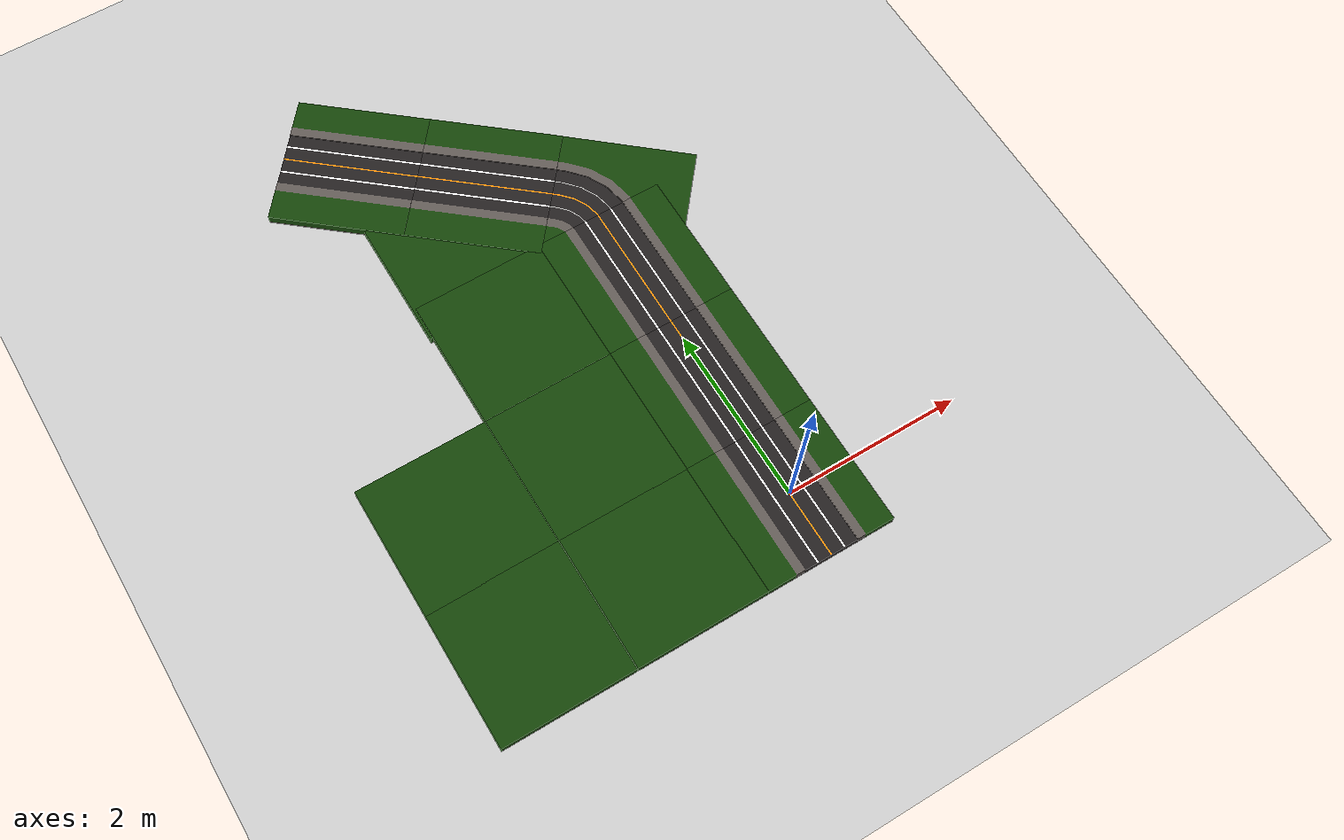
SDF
<sdf version="1.7">
 <world name="default">
  <light name="sun" type="directional">
   <pose>0 0 10 0 -0 0</pose>
   <diffuse>0.8 0.8 0.8 1</diffuse>
   <specular>0.2 0.2 0.2 1</specular>
   <attenuation>
    <range>1000</range>
    <constant>0.9</constant>
    <linear>0.01</linear>
    <quadratic>0.001</quadratic>
   </attenuation>
   <direction>-0.5 0.1 -0.9</direction>
   <spot><inner_angle>0</inner_angle><outer_angle>0</outer_angle><falloff>0</falloff></spot>
  </light>
  <model name="ground_plane">
   <pose>0 0 -0.1 0 -0 0</pose>
   <static>1</static>
   <link name="link">
    <collision name="collision">
     <geometry><plane><normal>0 0 1</normal><size>100 100</size></plane></geometry>
     <surface>
      <contact><collide_bitmask>65535</collide_bitmask></contact>
      <friction><ode><mu>100</mu><mu2>50</mu2></ode></friction>
     </surface>
    </collision>
    <visual name="visual">
     <cast_shadows>0</cast_shadows>
     <geometry><plane><normal>0 0 1</normal><size>100 100</size></plane></geometry>
     <material>
      <script><uri>file://media/materials/scripts/gazebo.material</uri><name>Gazebo/Grey</name></script>
     </material>
    </visual>
   </link>
  </model>
  <gravity>0 0 -9.8</gravity>
  <magnetic_field>6e-06 2.3e-05 -4.2e-05</magnetic_field>
  <atmosphere type="adiabatic"/>
  <physics type="ode">
   <max_step_size>0.001</max_step_size>
   <real_time_factor>1</real_time_factor>
   <real_time_update_rate>1000</real_time_update_rate>
  </physics>
  <scene>
   <sky><clouds><speed>12</speed></clouds></sky>
   <ambient>0.4 0.4 0.4 1</ambient>
   <background>0.7 0.7 0.7 1</background>
   <shadows>1</shadows>
  </scene>
  <spherical_coordinates>
   <surface_model>EARTH_WGS84</surface_model>
   <latitude_deg>0</latitude_deg>
   <longitude_deg>0</longitude_deg>
   <elevation>0</elevation>
   <heading_deg>0</heading_deg>
  </spherical_coordinates>
  <model name="road straight">
   <static>1</static>
   <link name="road straight">
    <visual name="panel">
     <geometry>
      <mesh><uri>model://road_straight/road_straight.dae</uri><scale>0.05 0.05 0.05</scale></mesh>
     </geometry>
    </visual>
    <collision name="panel_collision">
     <geometry><mesh><uri>model://road_straight/road_straight.dae</uri><scale>1 1 1</scale></mesh></geometry>
    </collision>
   </link>
  </model>
  <model name="road straight_clone">
   <static>1</static>
   <pose>0 1.49985 0 0 -0 0</pose>
   <link name="road straight">
    <visual name="panel">
     <geometry>
      <mesh><uri>model://road_straight/road_straight.dae</uri><scale>0.05 0.05 0.05</scale></mesh>
     </geometry>
    </visual>
    <collision name="panel_collision">
     <geometry><mesh><uri>model://road_straight/road_straight.dae</uri><scale>1 1 1</scale></mesh></geometry>
    </collision>
   </link>
  </model>
  <model name="road straight_clone_clone">
   <static>1</static>
   <pose>0 3 0 0 -0 0</pose>
   <link name="road straight">
    <visual name="panel">
     <geometry>
      <mesh><uri>model://road_straight/road_straight.dae</uri><scale>0.05 0.05 0.05</scale></mesh>
     </geometry>
    </visual>
    <collision name="panel_collision">
     <geometry><mesh><uri>model://road_straight/road_straight.dae</uri><scale>1 1 1</scale></mesh></geometry>
    </collision>
   </link>
  </model>
  <model name="road curve">
   <static>1</static>
   <pose>0.276407 3.76064 -0.011495 0 0 -2.26822</pose>
   <link name="road curve">
    <visual name="panel">
     <geometry><mesh><uri>model://road_curve/road_curve.dae</uri><scale>0.05 0.05 0.05</scale></mesh></geometry>
    </visual>
    <collision name="panel_collision">
     <geometry><mesh><uri>model://road_curve/road_curve.dae</uri><scale>1 1 1</scale></mesh></geometry>
    </collision>
   </link>
  </model>
  <model name="road straight_clone_0">
   <static>1</static>
   <pose>-0.876128 4.70829 0 0 -0 0.885453</pose>
   <link name="road straight">
    <visual name="panel">
     <geometry>
      <mesh><uri>model://road_straight/road_straight.dae</uri><scale>0.05 0.05 0.05</scale></mesh>
     </geometry>
    </visual>
    <collision name="panel_collision">
     <geometry><mesh><uri>model://road_straight/road_straight.dae</uri><scale>1 1 1</scale></mesh></geometry>
    </collision>
   </link>
  </model>
  <model name="tile plain">
   <static>1</static>
   <pose>-1.49713 2.99807 0 0 -0 0</pose>
   <link name="tile plain">
    <visual name="panel">
     <geometry><mesh><uri>model://tile_plain/tile_plain.dae</uri><scale>0.05 0.05 0.05</scale></mesh></geometry>
    </visual>
    <collision name="panel_collision">
     <geometry><mesh><uri>model://tile_plain/tile_plain.dae</uri><scale>1 1 1</scale></mesh></geometry>
    </collision>
   </link>
  </model>
  <model name="tile plain_clone">
   <static>1</static>
   <pose>-1.49572 1.49428 0 0 -0 0</pose>
   <link name="tile plain">
    <visual name="panel">
     <geometry><mesh><uri>model://tile_plain/tile_plain.dae</uri><scale>0.05 0.05 0.05</scale></mesh></geometry>
    </visual>
    <collision name="panel_collision">
     <geometry><mesh><uri>model://tile_plain/tile_plain.dae</uri><scale>1 1 1</scale></mesh></geometry>
    </collision>
   </link>
  </model>
  <model name="tile plain_clone_clone">
   <static>1</static>
   <pose>-1.49186 0 0 0 -0 0</pose>
   <link name="tile plain">
    <visual name="panel">
     <geometry><mesh><uri>model://tile_plain/tile_plain.dae</uri><scale>0.05 0.05 0.05</scale></mesh></geometry>
    </visual>
    <collision name="panel_collision">
     <geometry><mesh><uri>model://tile_plain/tile_plain.dae</uri><scale>1 1 1</scale></mesh></geometry>
    </collision>
   </link>
  </model>
  <model name="road straight_clone_0_clone">
   <static>1</static>
   <pose>-2.03856 5.65795 0 0 -0 0.883843</pose>
   <link name="road straight">
    <visual name="panel">
     <geometry>
      <mesh><uri>model://road_straight/road_straight.dae</uri><scale>0.05 0.05 0.05</scale></mesh>
     </geometry>
    </visual>
    <collision name="panel_collision">
     <geometry><mesh><uri>model://road_straight/road_straight.dae</uri><scale>1 1 1</scale></mesh></geometry>
    </collision>
   </link>
  </model>
  <model name="tile plain_clone_clone_clone">
   <static>1</static>
   <pose>-1.52899 4.11065 -0.013196 0 -0 0</pose>
   <link name="tile plain">
    <visual name="panel">
     <geometry><mesh><uri>model://tile_plain/tile_plain.dae</uri><scale>0.05 0.05 0.05</scale></mesh></geometry>
    </visual>
    <collision name="panel_collision">
     <geometry><mesh><uri>model://tile_plain/tile_plain.dae</uri><scale>1 1 1</scale></mesh></geometry>
    </collision>
   </link>
  </model>
  <model name="tile plain_clone_clone_0">
   <static>1</static>
   <pose>-3 1.49193 0 0 -0 0</pose>
   <link name="tile plain">
    <visual name="panel">
     <geometry><mesh><uri>model://tile_plain/tile_plain.dae</uri><scale>0.05 0.05 0.05</scale></mesh></geometry>
    </visual>
    <collision name="panel_collision">
     <geometry><mesh><uri>model://tile_plain/tile_plain.dae</uri><scale>1 1 1</scale></mesh></geometry>
    </collision>
   </link>
  </model>
  <model name="tile plain_clone_clone_clone_0">
   <static>1</static>
   <pose>-3 0 0 0 -0 0</pose>
   <link name="tile plain">
    <visual name="panel">
     <geometry><mesh><uri>model://tile_plain/tile_plain.dae</uri><scale>0.05 0.05 0.05</scale></mesh></geometry>
    </visual>
    <collision name="panel_collision">
     <geometry><mesh><uri>model://tile_plain/tile_plain.dae</uri><scale>1 1 1</scale></mesh></geometry>
    </collision>
   </link>
  </model>
 </world>
</sdf>
